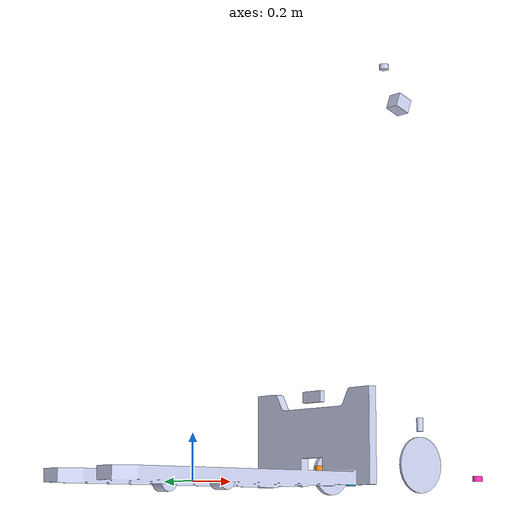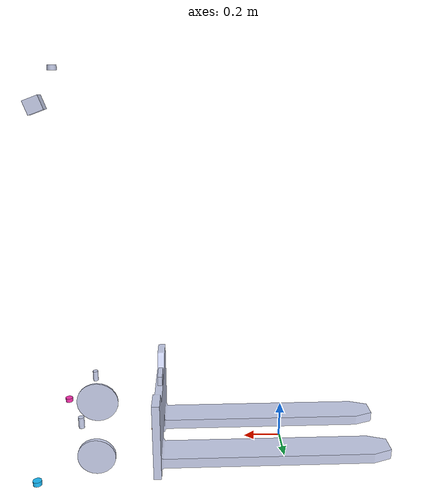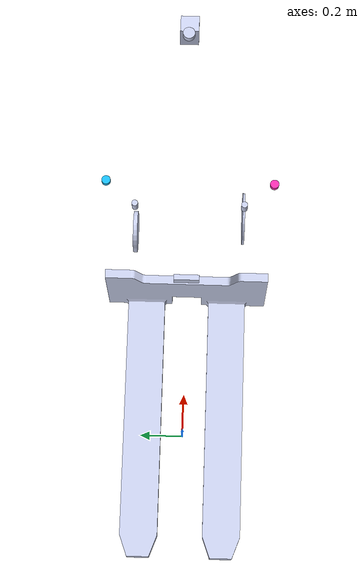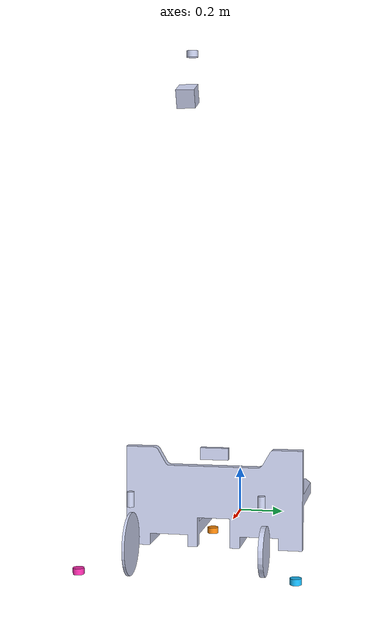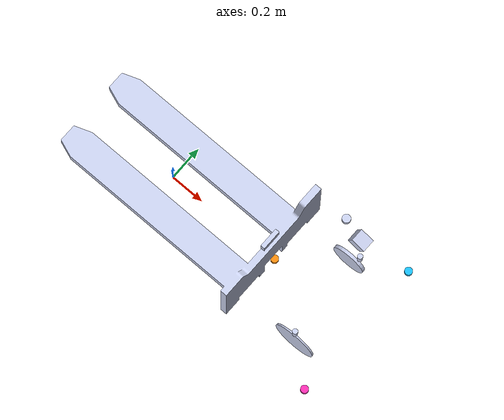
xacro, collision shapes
<?xml version="1.0" encoding="utf-8"?>
<robot xmlns:xacro="http://www.ros.org/wiki/xacro" name="forklift_demo">
  <xacro:arg name="use_sim_time" default="true"/>
  <link
    name="base_link">
    <inertial>
      <origin
        xyz="0.94148 -7.6988E-08 0.10"
        rpy="0 0 0" />
      <mass
        value="1000" />
      <inertia
        ixx="1152.4"
        ixy="0.00030978"
        ixz="23.035"
        iyy="1102.3"
        iyz="-5.1614E-05"
        izz="320.85" />
    </inertial>
    <visual>
      <origin
        xyz="0 0 0"
        rpy="0 0 0" />
      <geometry>
        <mesh
          filename="package://forklift_demo_description/urdf/meshes/base_link.STL" />
      </geometry>
      <material
        name="">
        <color
          rgba="0.10 0.75 1.00 1" />
      </material>
    </visual>
  </link>
  <link
    name="left_lidar_link">
    <inertial>
      <origin
        xyz="-6.9389E-18 0 6.9389E-18"
        rpy="0 0 0" />
      <mass
        value="0.28464" />
      <inertia
        ixx="4.8105E-05"
        ixy="-4.5139E-36"
        ixz="9.5557E-09"
        iyy="4.8105E-05"
        iyz="9.2387E-38"
        izz="6.8884E-05" />
    </inertial>
    <visual>
      <origin
        xyz="0 0 0"
        rpy="0 0 0" />
      <geometry>
        <mesh
          filename="package://forklift_demo_description/urdf/meshes/left_lidar_link.STL" />
      </geometry>
      <material
        name="">
        <color
          rgba="0.10 0.75 1.00 1" />
      </material>
    </visual>
    <collision>
      <origin
        xyz="0 0 0"
        rpy="0 0 0" />
      <geometry>
        <mesh
          filename="package://forklift_demo_description/urdf/meshes/left_lidar_link.STL" />
      </geometry>
    </collision>
  </link>
  <joint
    name="left_lidar_joint"
    type="fixed">
    <origin
      xyz="1.27295476942974 0.418116775610435 0.0239999999999846"
      rpy="0 -0.000459874311882969 0" />
    <parent
      link="base_link" />
    <child
      link="left_lidar_link" />
  </joint>
  <link
    name="right_lidar_link">
    <inertial>
      <origin
        xyz="-6.9389E-18 -5.5511E-17 6.9389E-18"
        rpy="0 0 0" />
      <mass
        value="0.28464" />
      <inertia
        ixx="4.8105E-05"
        ixy="6.6884E-53"
        ixz="3.7885E-22"
        iyy="4.8105E-05"
        iyz="1.4522E-37"
        izz="6.8884E-05" />
    </inertial>
    <visual>
      <origin
        xyz="0 0 0"
        rpy="0 0 0" />
      <geometry>
        <mesh
          filename="package://forklift_demo_description/urdf/meshes/right_lidar_link.STL" />
      </geometry>
      <material
        name="">
        <color
          rgba="1.00 0.18 0.70 1" />
      </material>
    </visual>
    <collision>
      <origin
        xyz="0 0 0"
        rpy="0 0 0" />
      <geometry>
        <mesh
          filename="package://forklift_demo_description/urdf/meshes/right_lidar_link.STL" />
      </geometry>
    </collision>
  </link>
  <joint
    name="right_lidar_joint"
    type="fixed">
    <origin
      xyz="1.27295476942975 -0.418116775610423 0.0239999999999846"
      rpy="0 0 0" />
    <parent
      link="base_link" />
    <child
      link="right_lidar_link" />
  </joint>
  <link
    name="rear_lidar_link">
    <inertial>
      <origin
        xyz="0 0 0.012"
        rpy="0 0 0" />
      <mass
        value="0.28464" />
      <inertia
        ixx="4.8105E-05"
        ixy="-6.0185E-36"
        ixz="6.2789E-37"
        iyy="4.8105E-05"
        iyz="-2.0758E-37"
        izz="6.8884E-05" />
    </inertial>
    <visual>
      <origin
        xyz="0 0 0"
        rpy="0 0 0" />
      <geometry>
        <mesh
          filename="package://forklift_demo_description/urdf/meshes/rear_lidar_link.STL" />
      </geometry>
      <material
        name="">
        <color
          rgba="1.00 0.55 0.05 1" />
      </material>
    </visual>
    <collision>
      <origin
        xyz="0 0 0"
        rpy="0 0 0" />
      <geometry>
        <mesh
          filename="package://forklift_demo_description/urdf/meshes/rear_lidar_link.STL" />
      </geometry>
    </collision>
  </link>
  <joint
    name="rear_lidar_joint"
    type="fixed">
    <origin
      xyz="0.705969649244955 0 0.0559999999999846"
      rpy="0 0.000459874311882969 -3.14159265358978" />
    <parent
      link="base_link" />
    <child
      link="rear_lidar_link" />
    <axis
      xyz="0 0 0" />
  </joint>
  <link
    name="up_lidar_link">
    <inertial>
      <origin
        xyz="0 0 0"
        rpy="0 0 0" />
      <mass
        value="0.284643374059973" />
      <inertia
        ixx="4.81274052613001E-05"
        ixy="1.31890466162261E-35"
        ixz="6.86039242171329E-07"
        iyy="4.81047302161354E-05"
        iyz="-3.03755087092172E-36"
        izz="6.88610214773487E-05" />
    </inertial>
    <visual>
      <origin
        xyz="0 0 0"
        rpy="0 0 0" />
      <geometry>
        <mesh
          filename="package://forklift_demo_description/urdf/meshes/up_lidar_link.STL" />
      </geometry>
      <material
        name="">
        <color
          rgba="0.792156862745098 0.819607843137255 0.933333333333333 1" />
      </material>
    </visual>
    <collision>
      <origin
        xyz="0 0 0"
        rpy="0 0 0" />
      <geometry>
        <mesh
          filename="package://forklift_demo_description/urdf/meshes/up_lidar_link.STL" />
      </geometry>
    </collision>
  </link>
  <joint
    name="up_lidar_joint"
    type="fixed">
    <origin
      xyz="1.12608148221207 0 1.98742227080532"
      rpy="0 -0.0334999573301522 0" />
    <parent
      link="base_link" />
    <child
      link="up_lidar_link" />
    <axis
      xyz="0 0 0" />
  </joint>
  <link
    name="3d_lidar_link">
    <inertial>
      <origin
        xyz="-0.04 -1.65556789141244E-18 2.22044604925031E-16"
        rpy="0 0 0" />
      <mass
        value="3.0576" />
      <inertia
        ixx="0.00249703999999999"
        ixy="2.84905452540826E-19"
        ixz="-2.16840434497101E-19"
        iyy="0.00287924"
        iyz="-3.13920448401802E-19"
        izz="0.00287924" />
    </inertial>
    <visual>
      <origin
        xyz="0 0 0"
        rpy="0 0 0" />
      <geometry>
        <mesh
          filename="package://forklift_demo_description/urdf/meshes/3d_lidar_link.STL" />
      </geometry>
      <material
        name="">
        <color
          rgba="0.792156862745098 0.819607843137255 0.933333333333333 1" />
      </material>
    </visual>
    <collision>
      <origin
        xyz="0 0 0"
        rpy="0 0 0" />
      <geometry>
        <mesh
          filename="package://forklift_demo_description/urdf/meshes/3d_lidar_link.STL" />
      </geometry>
    </collision>
  </link>
  <joint
    name="3d_lidar_joint"
    type="fixed">
    <origin
      xyz="1.25994093768194 0 1.80699999999998"
      rpy="0 0.349065850398863 0" />
    <parent
      link="base_link" />
    <child
      link="3d_lidar_link" />
    <axis
      xyz="0 0 0" />
  </joint>
  <link
    name="fork_left_wheel_link">
    <inertial>
      <origin
        xyz="0 1.73472347597681E-18 0"
        rpy="0 0 0" />
      <mass
        value="2.74449534217604" />
      <inertia
        ixx="0.00221846706825897"
        ixy="6.44168556386896E-20"
        ixz="8.80104428298725E-21"
        iyy="0.00221846706825897"
        iyz="-2.28461613208865E-20"
        izz="0.00219559627374084" />
    </inertial>
    <visual>
      <origin
        xyz="0 0 0"
        rpy="0 0 0" />
      <geometry>
        <mesh
          filename="package://forklift_demo_description/urdf/meshes/fork_left_wheel_link.STL" />
      </geometry>
      <material
        name="">
        <color
          rgba="0.792156862745098 0.819607843137255 0.933333333333333 1" />
      </material>
    </visual>
    <collision>
      <origin
        xyz="0 0 0"
        rpy="0 0 0" />
      <geometry>
        <cylinder radius="0.04" length="0.07" />
      </geometry>
    </collision>
  </link>
  <joint
    name="fork_left_wheel_joint"
    type="continuous">
    <origin
      xyz="0 0.2 0"
      rpy="1.5708 -0.00045987 0" />
    <parent
      link="base_link" />
    <child
      link="fork_left_wheel_link" />
    <axis
      xyz="0 0 1" />
    <dynamics
      damping="0.0"
      friction="0.0" />
  </joint>
  <link
    name="fork_right_wheel_link">
    <inertial>
      <origin
        xyz="-2.22044604925031E-16 3.46944695195361E-18 2.77555756156289E-17"
        rpy="0 0 0" />
      <mass
        value="2.74449534217604" />
      <inertia
        ixx="0.00221846706825897"
        ixy="3.66129991450671E-20"
        ixz="-2.44262349268226E-19"
        iyy="0.00221846706825897"
        iyz="-2.19879982597049E-20"
        izz="0.00219559627374084" />
    </inertial>
    <visual>
      <origin
        xyz="0 0 0"
        rpy="0 0 0" />
      <geometry>
        <mesh
          filename="package://forklift_demo_description/urdf/meshes/fork_right_wheel_link.STL" />
      </geometry>
      <material
        name="">
        <color
          rgba="0.792156862745098 0.819607843137255 0.933333333333333 1" />
      </material>
    </visual>
    <collision>
      <origin
        xyz="0 0 0"
        rpy="0 0 0" />
      <geometry>
        <cylinder radius="0.04" length="0.07" />
      </geometry>
    </collision>
  </link>
  <joint
    name="fork_right_wheel_joint"
    type="continuous">
    <origin
      xyz="0 -0.2 0"
      rpy="1.5708 -0.00045987 0" />
    <parent
      link="base_link" />
    <child
      link="fork_right_wheel_link" />
    <axis
      xyz="0 0 1" />
    <dynamics
      damping="0.0"
      friction="0.0" />
  </joint>
  <link
    name="fork_link">
    <inertial>
      <origin
        xyz="0.20613 1.3173E-13 0.16012"
        rpy="0 0 0" />
      <mass
        value="109.28" />
      <inertia
        ixx="7.0019"
        ixy="-4.1494E-13"
        ixz="2.401"
        iyy="14.74"
        iyz="9.8772E-14"
        izz="18.824" />
    </inertial>
    <visual>
      <origin
        xyz="0 0 0"
        rpy="0 0 0" />
      <geometry>
        <mesh
          filename="package://forklift_demo_description/urdf/meshes/fork_link.STL" />
      </geometry>
      <material
        name="">
        <color
          rgba="0.79216 0.81961 0.93333 1" />
      </material>
    </visual>
    <collision>
      <origin
        xyz="0 0 0"
        rpy="0 0 0" />
      <geometry>
        <mesh
          filename="package://forklift_demo_description/urdf/meshes/fork_link.STL" />
      </geometry>
    </collision>
  </link>
  <joint
    name="fork_joint"
    type="prismatic">
    <origin
      xyz="0.697 0 -0.01"
      rpy="0 0.00045987 -3.1416" />
    <parent
      link="base_link" />
    <child
      link="fork_link" />
    <axis
      xyz="0 0 1" />
    <limit
      lower="0"
      upper="1"
      effort="30000"
      velocity="0.4" />
  </joint>
  <link
    name="camera_link">
    <inertial>
      <origin
        xyz="-0.0125000000000033 1.25403778269255E-13 -9.43689570931383E-16"
        rpy="0 0 0" />
      <mass
        value="1.1505" />
      <inertia
        ixx="0.001574651"
        ixy="-3.81473760349349E-19"
        ixz="-1.05515558313288E-20"
        iyy="0.000299609375"
        iyz="-1.03094594493258E-19"
        izz="0.001394885375" />
    </inertial>
    <visual>
      <origin
        xyz="0 0 0"
        rpy="0 0 0" />
      <geometry>
        <mesh
          filename="package://forklift_demo_description/urdf/meshes/camera_link.STL" />
      </geometry>
      <material
        name="">
        <color
          rgba="0.792156862745098 0.819607843137255 0.933333333333333 1" />
      </material>
    </visual>
    <collision>
      <origin
        xyz="0 0 0"
        rpy="0 0 0" />
      <geometry>
        <mesh
          filename="package://forklift_demo_description/urdf/meshes/camera_link.STL" />
      </geometry>
    </collision>
  </link>
  <joint
    name="camera_joint"
    type="fixed">
    <origin
      xyz="0.04 0 0.395"
      rpy="0 0 0" />
    <parent
      link="fork_link" />
    <child
      link="camera_link" />
    <axis
      xyz="0 0 0" />
  </joint>
  <link
    name="left_steering_link">
    <inertial>
      <origin
        xyz="1.37962288702387E-05 0 0.0299999968277342"
        rpy="0 0 0" />
      <mass
        value="0.330809706423005" />
      <inertia
        ixx="0.000117850940860182"
        ixy="1.322946336317E-40"
        ixz="-3.70818982600544E-08"
        iyy="0.000117850957913196"
        iyz="2.87675612416745E-37"
        izz="3.72161090256018E-05" />
    </inertial>
    <visual>
      <origin
        xyz="0 0 0"
        rpy="0 0 0" />
      <geometry>
        <mesh
          filename="package://forklift_demo_description/urdf/meshes/left_steering_link.STL" />
      </geometry>
      <material
        name="">
        <color
          rgba="0.792156862745098 0.819607843137255 0.933333333333333 1" />
      </material>
    </visual>
    <collision>
      <origin
        xyz="0 0 0"
        rpy="0 0 0" />
      <geometry>
        <mesh
          filename="package://forklift_demo_description/urdf/meshes/left_steering_link.STL" />
      </geometry>
    </collision>
  </link>
  <joint
    name="left_steering_joint"
    type="revolute">
    <origin
      xyz="1.065 0.258 0.235"
      rpy="0 -0.00045987 0" />
    <parent
      link="base_link" />
    <child
      link="left_steering_link" />
    <axis
      xyz="0.00045987 0 1" />
    <limit
      lower="-3.1416"
      upper="3.1416"
      effort="1000000000"
      velocity="6.0" />
    <dynamics
      damping="0.0"
      friction="0.0" />
  </joint>
  <link
    name="left_wheel_link">
    <inertial>
      <origin
        xyz="0 0 0"
        rpy="0 0 0" />
      <mass
        value="19.1134497044403" />
      <inertia
        ixx="0.057474143261252"
        ixy="-5.16920490786777E-18"
        ixz="1.68354359518156E-23"
        iyy="0.057474143261252"
        iyz="2.19872438968088E-18"
        izz="0.0955672485222015" />
    </inertial>
    <visual>
      <origin
        xyz="0 0 0"
        rpy="0 0 0" />
      <geometry>
        <mesh
          filename="package://forklift_demo_description/urdf/meshes/left_wheel_link.STL" />
      </geometry>
      <material
        name="">
        <color
          rgba="0.792156862745098 0.819607843137255 0.933333333333333 1" />
      </material>
    </visual>
    <collision>
      <origin
        xyz="0 0 0"
        rpy="0 0 0" />
      <geometry>
        <cylinder radius="0.1" length="0.02" />
      </geometry>
    </collision>
  </link>
  <joint
    name="left_wheel_joint"
    type="continuous">
    <origin
      xyz="-0.066113 0 -0.17497"
      rpy="1.5708 0 0" />
    <parent
      link="left_steering_link" />
    <child
      link="left_wheel_link" />
    <axis
      xyz="0 0 1" />
    <dynamics
      damping="0.0"
      friction="0.0" />
  </joint>
  <link
    name="right_steering_link">
    <inertial>
      <origin
        xyz="1.37962288702109E-05 0 0.0299999968277342"
        rpy="0 0 0" />
      <mass
        value="0.330809706423005" />
      <inertia
        ixx="0.000117850940860182"
        ixy="1.322946336317E-40"
        ixz="-3.70818982600544E-08"
        iyy="0.000117850957913196"
        iyz="2.87675612416745E-37"
        izz="3.72161090256018E-05" />
    </inertial>
    <visual>
      <origin
        xyz="0 0 0"
        rpy="0 0 0" />
      <geometry>
        <mesh
          filename="package://forklift_demo_description/urdf/meshes/right_steering_link.STL" />
      </geometry>
      <material
        name="">
        <color
          rgba="0.792156862745098 0.819607843137255 0.933333333333333 1" />
      </material>
    </visual>
    <collision>
      <origin
        xyz="0 0 0"
        rpy="0 0 0" />
      <geometry>
        <mesh
          filename="package://forklift_demo_description/urdf/meshes/right_steering_link.STL" />
      </geometry>
    </collision>
  </link>
  <joint
    name="right_steering_joint"
    type="revolute">
    <origin
      xyz="1.07 -0.264 0.235"
      rpy="0 -0.00045987 0" />
    <parent
      link="base_link" />
    <child
      link="right_steering_link" />
    <axis
      xyz="0.00045987 0 1" />
    <limit
      lower="-3.1416"
      upper="3.1416"
      effort="1000000000"
      velocity="6.0" />
  </joint>
  <link
    name="right_wheel_link">
    <inertial>
      <origin
        xyz="0 -1.38777878078145E-17 0"
        rpy="0 0 0" />
      <mass
        value="38.2881604656256" />
      <inertia
        ixx="0.181469927206871"
        ixy="1.97324795392362E-17"
        ixz="3.10993926085734E-18"
        iyy="0.181469927206871"
        iyz="1.95059178163127E-18"
        izz="0.2991262536377" />
    </inertial>
    <visual>
      <origin
        xyz="0 0 0"
        rpy="0 0 0" />
      <geometry>
        <mesh
          filename="package://forklift_demo_description/urdf/meshes/right_wheel_link.STL" />
      </geometry>
      <material
        name="">
        <color
          rgba="0.792156862745098 0.819607843137255 0.933333333333333 1" />
      </material>
    </visual>
    <collision>
      <origin
        xyz="0 0 0"
        rpy="0 0 0" />
      <geometry>
        <cylinder radius="0.125" length="0.01" />
      </geometry>
    </collision>
  </link>
  <joint
    name="right_wheel_joint"
    type="continuous">
    <origin
      xyz="-6.8981E-05 0 -0.15"
      rpy="1.5708 0 0" />
    <parent
      link="right_steering_link" />
    <child
      link="right_wheel_link" />
    <axis
      xyz="0 0 1" />
    <limit
      effort="12000"
      velocity="30.0" />
  </joint>
  <gazebo reference="left_lidar_link">
    <sensor name="left_lidar" type="gpu_lidar">
      <always_on>true</always_on>
      <update_rate>12</update_rate>
      <visualize>false</visualize>
      <topic>/scan_left</topic>
      <gz_frame_id>left_lidar_link</gz_frame_id>
      <ray>
        <scan>
          <horizontal>
            <samples>720</samples>
            <resolution>1</resolution>
            <min_angle>-3.14159265359</min_angle>
            <max_angle>1.57079632679</max_angle>
          </horizontal>
        </scan>
        <range>
          <min>0.05</min>
          <max>10.0</max>
          <resolution>0.01</resolution>
        </range>
        <noise>
          <type>gaussian</type>
          <mean>0.0</mean>
          <stddev>0.015</stddev>
        </noise>
      </ray>
    </sensor>
  </gazebo>
  <gazebo reference="right_lidar_link">
    <sensor name="right_lidar" type="gpu_lidar">
      <always_on>true</always_on>
      <update_rate>12</update_rate>
      <visualize>false</visualize>
      <topic>/scan_right</topic>
      <gz_frame_id>right_lidar_link</gz_frame_id>
      <ray>
        <scan>
          <horizontal>
            <samples>720</samples>
            <resolution>1</resolution>
            <min_angle>-1.57079632679</min_angle>
            <max_angle>3.14159265359</max_angle>
          </horizontal>
        </scan>
        <range>
          <min>0.05</min>
          <max>10.0</max>
          <resolution>0.01</resolution>
        </range>
        <noise>
          <type>gaussian</type>
          <mean>0.0</mean>
          <stddev>0.015</stddev>
        </noise>
      </ray>
    </sensor>
  </gazebo>
  <gazebo reference="rear_lidar_link">
    <sensor name="rear_lidar" type="gpu_lidar">
      <always_on>true</always_on>
      <update_rate>12</update_rate>
      <visualize>false</visualize>
      <topic>/scan_raw</topic>
      <gz_frame_id>rear_lidar_link</gz_frame_id>
      <ray>
        <scan>
          <horizontal>
            <samples>720</samples>
            <resolution>1</resolution>
            <min_angle>-0.78539816339</min_angle>
            <max_angle>0.78539816339</max_angle>
          </horizontal>
        </scan>
        <range>
          <min>0.05</min>
          <max>10.0</max>
          <resolution>0.01</resolution>
        </range>
        <noise>
          <type>gaussian</type>
          <mean>0.0</mean>
          <stddev>0.015</stddev>
        </noise>
      </ray>
    </sensor>
  </gazebo>
  <gazebo reference="up_lidar_link">
    <sensor name="up_lidar" type="gpu_lidar">
      <always_on>true</always_on>
      <update_rate>12</update_rate>
      <visualize>false</visualize>
      <topic>/scan_up</topic>
      <gz_frame_id>up_lidar_link</gz_frame_id>
      <ray>
        <scan>
          <horizontal>
            <samples>720</samples>
            <resolution>1</resolution>
            <min_angle>-3.14159265359</min_angle>
            <max_angle>3.14159265359</max_angle>
          </horizontal>
        </scan>
        <range>
          <min>0.05</min>
          <max>12.0</max>
          <resolution>0.01</resolution>
        </range>
        <noise>
          <type>gaussian</type>
          <mean>0.0</mean>
          <stddev>0.015</stddev>
        </noise>
      </ray>
    </sensor>
  </gazebo>
  <gazebo reference="3d_lidar_link">
    <sensor name="lidar_3d" type="rgbd_camera">
      <always_on>true</always_on>
      <update_rate>10</update_rate>
      <visualize>false</visualize>
      <topic>lidar_3d</topic>
      <gz_frame_id>3d_lidar_link</gz_frame_id>
      <camera>
        <horizontal_fov>1.2287117934</horizontal_fov>
        <image>
          <width>280</width>
          <height>160</height>
        </image>
        <clip>
          <near>0.10</near>
          <far>20.0</far>
        </clip>
      </camera>
    </sensor>
  </gazebo>
  <gazebo reference="camera_link">
    <sensor name="camera" type="rgbd_camera">
      <always_on>true</always_on>
      <update_rate>10</update_rate>
      <visualize>false</visualize>
      <topic>camera</topic>
      <gz_frame_id>camera_link</gz_frame_id>
      <camera>
        <horizontal_fov>1.047</horizontal_fov>
        <image>
          <width>640</width>
          <height>480</height>
        </image>
        <clip>
          <near>0.1</near>
          <far>10.0</far>
        </clip>
      </camera>
    </sensor>
  </gazebo>
  <gazebo reference="left_lidar_joint">
    <preserveFixedJoint>true</preserveFixedJoint>
  </gazebo>
  <gazebo reference="right_lidar_joint">
    <preserveFixedJoint>true</preserveFixedJoint>
  </gazebo>
  <gazebo reference="rear_lidar_joint">
    <preserveFixedJoint>true</preserveFixedJoint>
  </gazebo>
  <gazebo reference="up_lidar_joint">
    <preserveFixedJoint>true</preserveFixedJoint>
  </gazebo>
  <gazebo reference="3d_lidar_joint">
    <preserveFixedJoint>true</preserveFixedJoint>
  </gazebo>
  <gazebo reference="camera_joint">
    <preserveFixedJoint>true</preserveFixedJoint>
  </gazebo>
  <gazebo reference="right_wheel_link">
    <mu1>1000.0</mu1>
    <mu2>1000.0</mu2>
  </gazebo>
  <gazebo reference="left_wheel_link">
    <mu1>1000.0</mu1>
    <mu2>1000.0</mu2>
  </gazebo>
  <gazebo reference="fork_left_wheel_link">
    <mu1>1000.0</mu1>
    <mu2>1000.0</mu2>
  </gazebo>
  <gazebo reference="fork_right_wheel_link">
    <mu1>1000.0</mu1>
    <mu2>1000.0</mu2>
  </gazebo>
  <gazebo>
    <plugin filename="gz-sim-odometry-publisher-system" name="gz::sim::systems::OdometryPublisher">
      <odom_topic>/odom_gz</odom_topic>
      <tf_topic>/tf_gz</tf_topic>
      <odom_frame>odom</odom_frame>
      <robot_base_frame>base_link</robot_base_frame>
      <odom_publish_frequency>30</odom_publish_frequency>
      <dimensions>2</dimensions>
    </plugin>
    <plugin filename="gz-sim-joint-state-publisher-system" name="gz::sim::systems::JointStatePublisher">
      <topic>/joint_states_gz</topic>
      <joint_name>fork_left_wheel_joint</joint_name>
      <joint_name>fork_right_wheel_joint</joint_name>
      <joint_name>fork_joint</joint_name>
      <joint_name>left_steering_joint</joint_name>
      <joint_name>left_wheel_joint</joint_name>
      <joint_name>right_steering_joint</joint_name>
      <joint_name>right_wheel_joint</joint_name>
    </plugin>
    <plugin filename="gz-sim-joint-position-controller-system" name="gz::sim::systems::JointPositionController">
      <joint_name>right_steering_joint</joint_name>
      <topic>/forklift/right_steering_cmd</topic>
      <p_gain>1800</p_gain>
      <i_gain>0.5</i_gain>
      <d_gain>300</d_gain>
      <i_max>5</i_max>
      <i_min>-5</i_min>
    </plugin>
    <plugin filename="gz-sim-joint-controller-system" name="gz::sim::systems::JointController">
      <joint_name>fork_joint</joint_name>
      <topic>/forklift/fork_velocity_cmd</topic>
      <initial_velocity>0.0</initial_velocity>
    </plugin>
    <plugin filename="gz-sim-joint-controller-system" name="gz::sim::systems::JointController">
      <joint_name>right_wheel_joint</joint_name>
      <topic>/forklift/right_wheel_cmd</topic>
    </plugin>
  </gazebo>
</robot>
